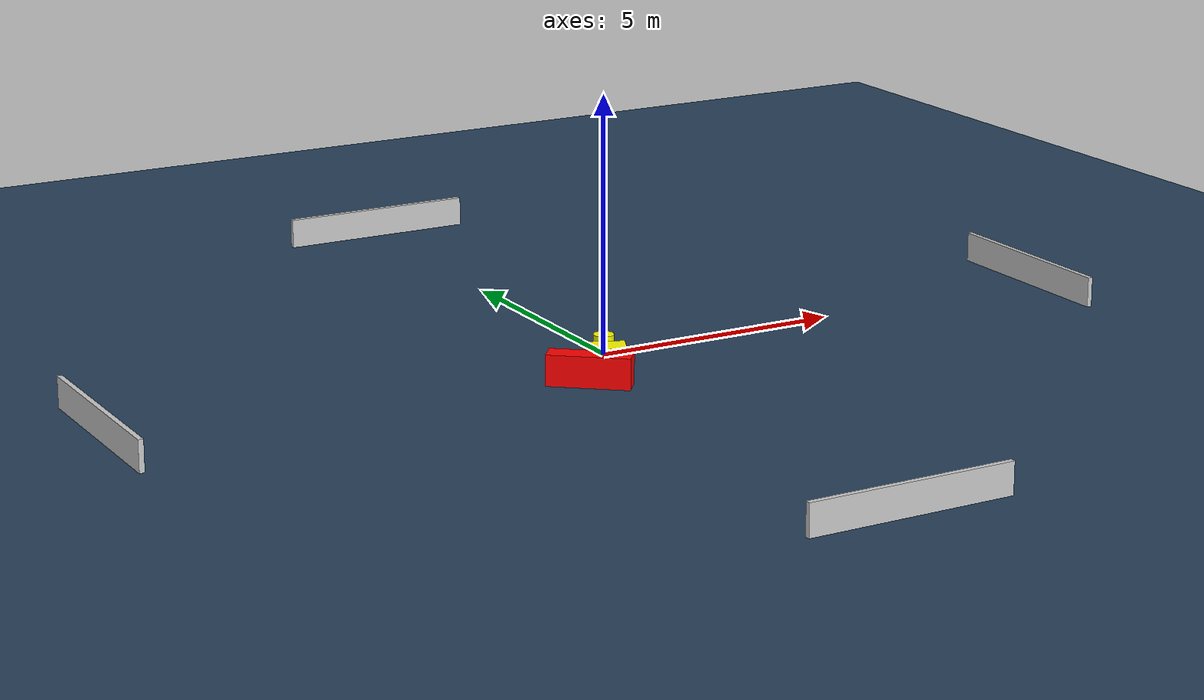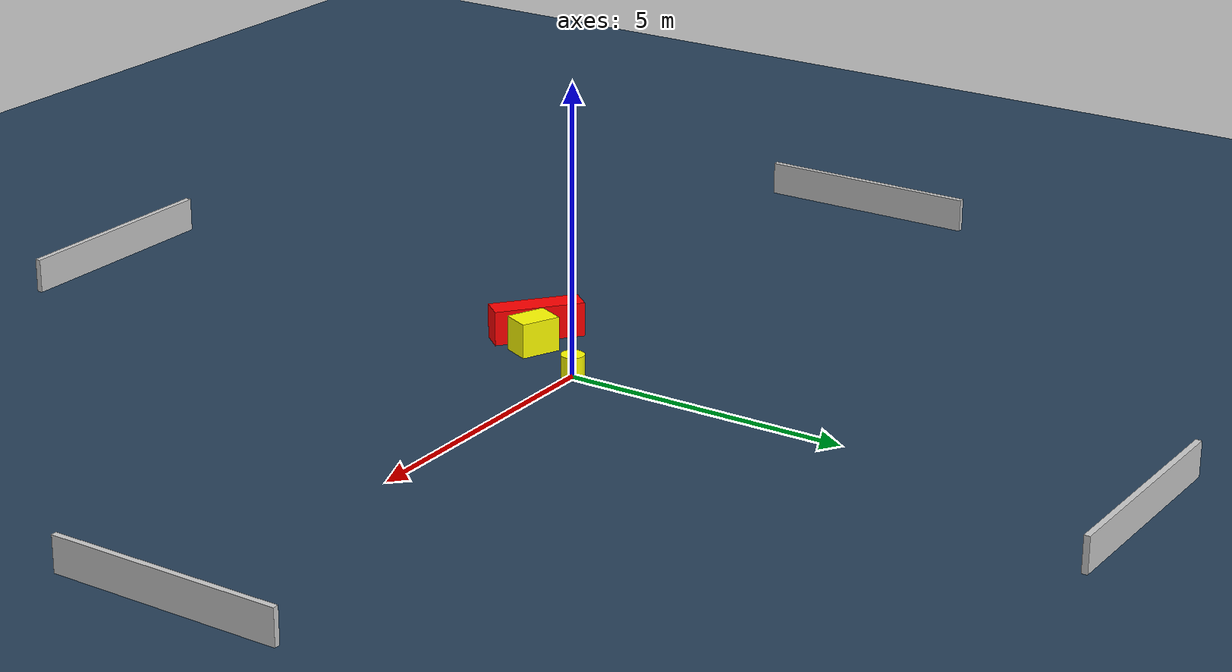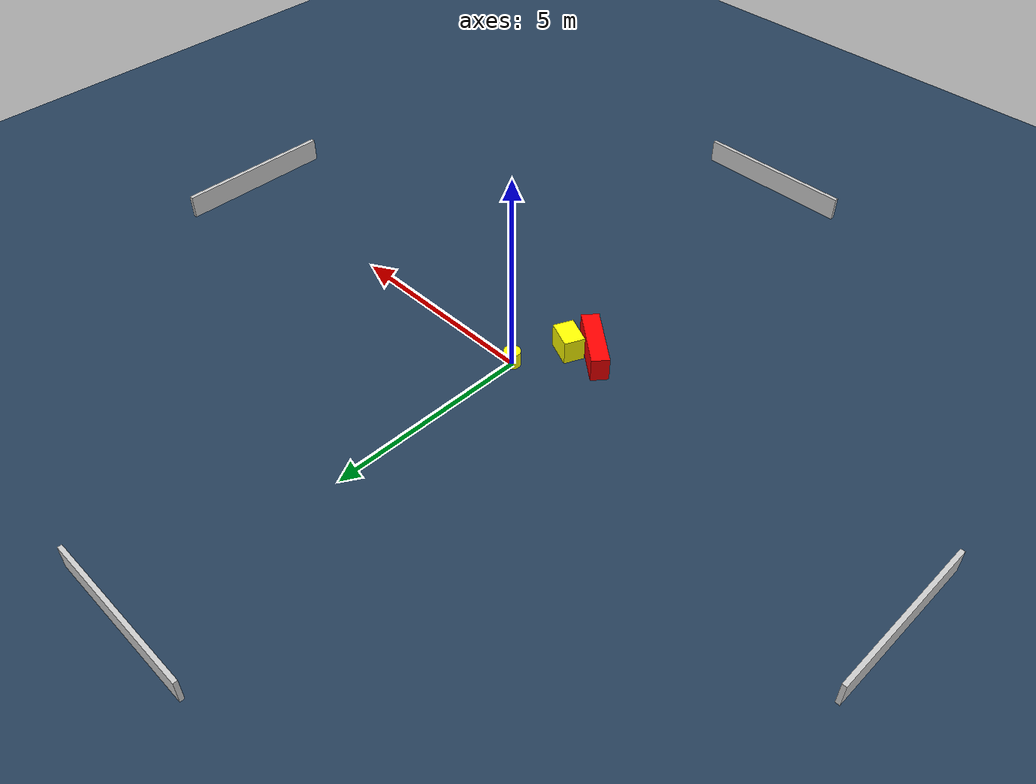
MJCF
<?xml version="1.0" ?>
<mujoco model="generated_environment">
  <option timestep="0.01" integrator="RK4" cone="elliptic"/>
  <default>
    <geom density="1"/>
  </default>
  <asset>
    <texture builtin="gradient" height="3072" name="skybox" rgb1="0.3 0.5 0.7" rgb2="0 0 0" type="skybox" width="512"/>
    <texture builtin="checker" height="300" name="groundplane" rgb1="0.2 0.3 0.4" rgb2="0.1 0.2 0.3" type="2d" width="300"/>
    <material name="groundplane" reflectance="0.2" texrepeat="5 5" texture="groundplane"/>
  </asset>
  <worldbody>
    <light dir="0 0 -1" directional="true" pos="0 0 1.5"/>
    <geom condim="3" friction="0.5 0.005 0.001" material="groundplane" name="floor" pos="0 0 0" size="0 0 0.05" type="plane"/>
    <body name="walls">
      <geom name="wall_1" condim="4" pos="-10.0 0.0 0.3" rgba="0.800000011920929 0.800000011920929 0.800000011920929 1.0" size="0.05 2.0 0.3" type="box"/>
      <geom name="wall_2" condim="4" pos="10.0 0.0 0.3" rgba="0.800000011920929 0.800000011920929 0.800000011920929 1.0" size="0.05 2.0 0.3" type="box"/>
      <geom name="wall_3" condim="4" pos="0.0 -10.0 0.3" rgba="0.800000011920929 0.800000011920929 0.800000011920929 1.0" size="2.0 0.05 0.3" type="box"/>
      <geom name="wall_4" condim="4" pos="0.0 10.0 0.3" rgba="0.800000011920929 0.800000011920929 0.800000011920929 1.0" size="2.0 0.05 0.3" type="box"/>
    </body>
    <body name="robot">
      <joint name="joint_x" type="slide" pos="0 0 0" axis="1 0 0"/>
      <joint name="joint_y" type="slide" pos="0 0 0" axis="0 1 0"/>
      <geom name="robot" type="cylinder" pos="0.0 0.0 0.2" size="0.2 0.2 0.0" mass="5.0" friction="1.0 0.005 0.0001" condim="4" rgba="1.0 1.0 0.0 1.0"/>
    </body>
    <body name="obstacle_1_movable">
      <geom name="obstacle_1_movable" condim="4" pos="-0.6147694742376256 -1.211954848619486 0.3" euler="0 0 156.08985807581647" friction="0.0 0.005 0.001" rgba="1.0 1.0 0.0 1.0" size="0.3498264296502879 0.2527622135556454 0.3" type="box" mass="0.1"/>
      <joint type="free"/>
    </body>
    <body name="obstacle_2_static">
      <geom name="obstacle_2_static" condim="4" pos="-1.1504391488950036 -1.5145613974893233 0.3" euler="0 0 50.93796493402137" friction="0.0 0.005 0.001" rgba="1.0 0.0 0.0 1.0" size="0.21470663132468062 0.7878906512042791 0.3" type="box"/>
    </body>
  </worldbody>
  <actuator>
    <motor name="actuator_x" joint="joint_x" gear="1" ctrlrange="-1 1"/>
    <motor name="actuator_y" joint="joint_y" gear="1" ctrlrange="-1 1"/>
  </actuator>
</mujoco>
